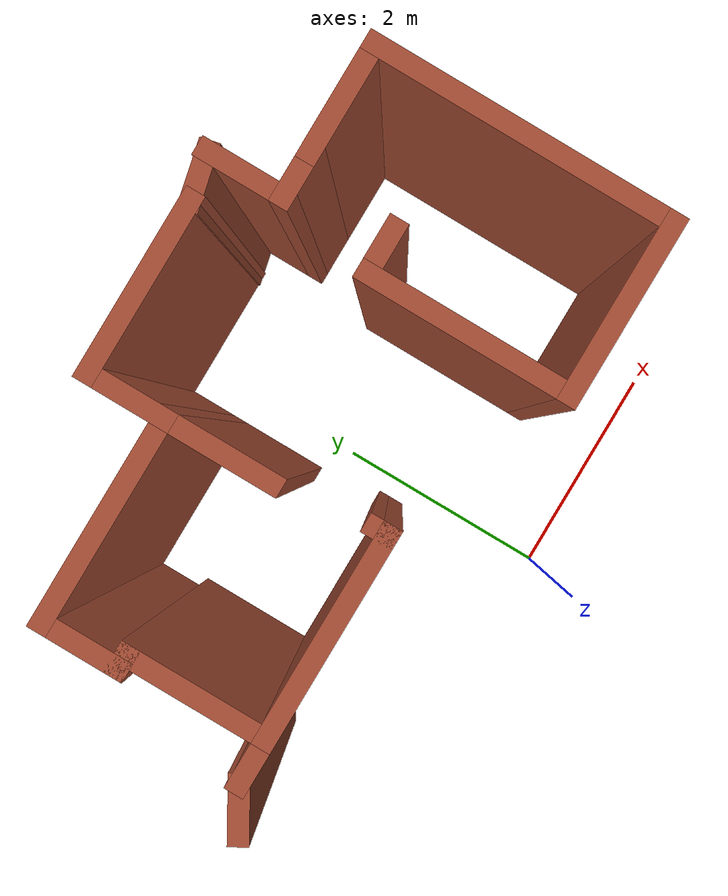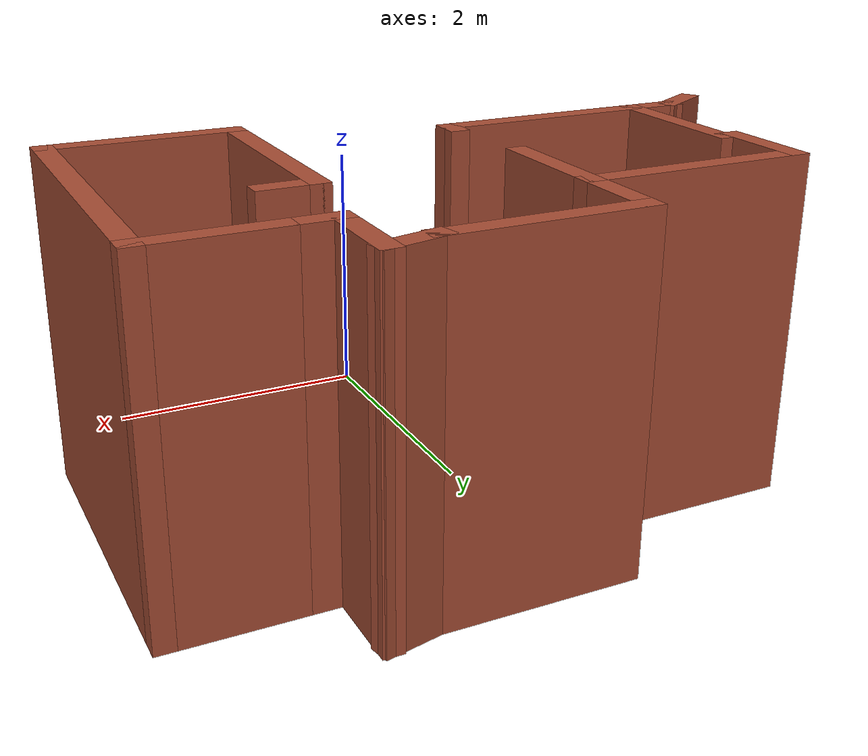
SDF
<sdf version="1.6">
 <model name="map_41">
  <link name="Wall_1">
   <pose>0.319898 3.71517 0 0 -0 3.14159</pose>
   <visual name="Wall_1_Visual">
    <pose>0 0 1.25 0 -0 0</pose>
    <geometry><box><size>1.5 0.15 2.5</size></box></geometry>
    <material>
     <script><uri>file://media/materials/scripts/gazebo.material</uri><name>Gazebo/Bricks</name></script>
     <ambient>1 1 1 1</ambient>
     <shader type="pixel"/>
    </material>
    <meta><layer>0</layer></meta>
   </visual>
   <collision name="Wall_1_Collision">
    <pose>0 0 1.25 0 -0 0</pose>
    <geometry><box><size>1.5 0.15 2.5</size></box></geometry>
    <surface>
     <friction>
      <ode><mu>1</mu><mu2>1</mu2><fdir1>0 0 0</fdir1><slip1>0</slip1><slip2>0</slip2></ode>
      <torsional>
       <coefficient>1</coefficient>
       <patch_radius>0</patch_radius>
       <surface_radius>0</surface_radius>
       <use_patch_radius>1</use_patch_radius>
       <ode><slip>0</slip></ode>
      </torsional>
     </friction>
     <bounce><restitution_coefficient>0</restitution_coefficient><threshold>1e+06</threshold></bounce>
     <contact>
      <collide_without_contact>0</collide_without_contact>
      <collide_without_contact_bitmask>1</collide_without_contact_bitmask>
      <collide_bitmask>1</collide_bitmask>
      <ode>
       <soft_cfm>0</soft_cfm>
       <soft_erp>0.2</soft_erp>
       <kp>1e+13</kp>
       <kd>1</kd>
       <max_vel>0.01</max_vel>
       <min_depth>0</min_depth>
      </ode>
      <bullet>
       <split_impulse>1</split_impulse>
       <split_impulse_penetration_threshold>-0.01</split_impulse_penetration_threshold>
       <soft_cfm>0</soft_cfm>
       <soft_erp>0.2</soft_erp>
       <kp>1e+13</kp>
       <kd>1</kd>
      </bullet>
     </contact>
    </surface>
   </collision>
  </link>
  <link name="Wall_2">
   <pose>-0.355102 3.41517 0 0 0 -1.5708</pose>
   <visual name="Wall_2_Visual">
    <pose>0 0 1.25 0 -0 0</pose>
    <geometry><box><size>0.75 0.15 2.5</size></box></geometry>
    <material>
     <script><uri>file://media/materials/scripts/gazebo.material</uri><name>Gazebo/Bricks</name></script>
     <ambient>1 1 1 1</ambient>
     <shader type="pixel"/>
    </material>
    <meta><layer>0</layer></meta>
   </visual>
   <collision name="Wall_2_Collision">
    <pose>0 0 1.25 0 -0 0</pose>
    <geometry><box><size>0.75 0.15 2.5</size></box></geometry>
    <surface>
     <friction>
      <ode><mu>1</mu><mu2>1</mu2><fdir1>0 0 0</fdir1><slip1>0</slip1><slip2>0</slip2></ode>
      <torsional>
       <coefficient>1</coefficient>
       <patch_radius>0</patch_radius>
       <surface_radius>0</surface_radius>
       <use_patch_radius>1</use_patch_radius>
       <ode><slip>0</slip></ode>
      </torsional>
     </friction>
     <bounce><restitution_coefficient>0</restitution_coefficient><threshold>1e+06</threshold></bounce>
     <contact>
      <collide_without_contact>0</collide_without_contact>
      <collide_without_contact_bitmask>1</collide_without_contact_bitmask>
      <collide_bitmask>1</collide_bitmask>
      <ode>
       <soft_cfm>0</soft_cfm>
       <soft_erp>0.2</soft_erp>
       <kp>1e+13</kp>
       <kd>1</kd>
       <max_vel>0.01</max_vel>
       <min_depth>0</min_depth>
      </ode>
      <bullet>
       <split_impulse>1</split_impulse>
       <split_impulse_penetration_threshold>-0.01</split_impulse_penetration_threshold>
       <soft_cfm>0</soft_cfm>
       <soft_erp>0.2</soft_erp>
       <kp>1e+13</kp>
       <kd>1</kd>
      </bullet>
     </contact>
    </surface>
   </collision>
  </link>
  <link name="Wall_3">
   <pose>-1.1551 3.11517 0 0 -0 3.14159</pose>
   <visual name="Wall_3_Visual">
    <pose>0 0 1.25 0 -0 0</pose>
    <geometry><box><size>1.75 0.15 2.5</size></box></geometry>
    <material>
     <script><uri>file://media/materials/scripts/gazebo.material</uri><name>Gazebo/Bricks</name></script>
     <ambient>1 1 1 1</ambient>
     <shader type="pixel"/>
    </material>
    <meta><layer>0</layer></meta>
   </visual>
   <collision name="Wall_3_Collision">
    <pose>0 0 1.25 0 -0 0</pose>
    <geometry><box><size>1.75 0.15 2.5</size></box></geometry>
    <surface>
     <friction>
      <ode><mu>1</mu><mu2>1</mu2><fdir1>0 0 0</fdir1><slip1>0</slip1><slip2>0</slip2></ode>
      <torsional>
       <coefficient>1</coefficient>
       <patch_radius>0</patch_radius>
       <surface_radius>0</surface_radius>
       <use_patch_radius>1</use_patch_radius>
       <ode><slip>0</slip></ode>
      </torsional>
     </friction>
     <bounce><restitution_coefficient>0</restitution_coefficient><threshold>1e+06</threshold></bounce>
     <contact>
      <collide_without_contact>0</collide_without_contact>
      <collide_without_contact_bitmask>1</collide_without_contact_bitmask>
      <collide_bitmask>1</collide_bitmask>
      <ode>
       <soft_cfm>0</soft_cfm>
       <soft_erp>0.2</soft_erp>
       <kp>1e+13</kp>
       <kd>1</kd>
       <max_vel>0.01</max_vel>
       <min_depth>0</min_depth>
      </ode>
      <bullet>
       <split_impulse>1</split_impulse>
       <split_impulse_penetration_threshold>-0.01</split_impulse_penetration_threshold>
       <soft_cfm>0</soft_cfm>
       <soft_erp>0.2</soft_erp>
       <kp>1e+13</kp>
       <kd>1</kd>
      </bullet>
     </contact>
    </surface>
   </collision>
  </link>
  <link name="Wall_36">
   <pose>1.86428 0.842681 0 0 -0 0</pose>
   <visual name="Wall_36_Visual">
    <pose>0 0 1.25 0 -0 0</pose>
    <geometry><box><size>1.5 0.15 2.5</size></box></geometry>
    <material>
     <script><uri>file://media/materials/scripts/gazebo.material</uri><name>Gazebo/Bricks</name></script>
     <ambient>1 1 1 1</ambient>
     <shader type="pixel"/>
    </material>
    <meta><layer>0</layer></meta>
   </visual>
   <collision name="Wall_36_Collision">
    <pose>0 0 1.25 0 -0 0</pose>
    <geometry><box><size>1.5 0.15 2.5</size></box></geometry>
    <surface>
     <friction>
      <ode><mu>1</mu><mu2>1</mu2><fdir1>0 0 0</fdir1><slip1>0</slip1><slip2>0</slip2></ode>
      <torsional>
       <coefficient>1</coefficient>
       <patch_radius>0</patch_radius>
       <surface_radius>0</surface_radius>
       <use_patch_radius>1</use_patch_radius>
       <ode><slip>0</slip></ode>
      </torsional>
     </friction>
     <bounce><restitution_coefficient>0</restitution_coefficient><threshold>1e+06</threshold></bounce>
     <contact>
      <collide_without_contact>0</collide_without_contact>
      <collide_without_contact_bitmask>1</collide_without_contact_bitmask>
      <collide_bitmask>1</collide_bitmask>
      <ode>
       <soft_cfm>0</soft_cfm>
       <soft_erp>0.2</soft_erp>
       <kp>1e+13</kp>
       <kd>1</kd>
       <max_vel>0.01</max_vel>
       <min_depth>0</min_depth>
      </ode>
      <bullet>
       <split_impulse>1</split_impulse>
       <split_impulse_penetration_threshold>-0.01</split_impulse_penetration_threshold>
       <soft_cfm>0</soft_cfm>
       <soft_erp>0.2</soft_erp>
       <kp>1e+13</kp>
       <kd>1</kd>
      </bullet>
     </contact>
    </surface>
   </collision>
  </link>
  <link name="Wall_37">
   <pose>2.53928 2.01768 0 0 -0 1.5708</pose>
   <visual name="Wall_37_Visual">
    <pose>0 0 1.25 0 -0 0</pose>
    <geometry><box><size>2.5 0.15 2.5</size></box></geometry>
    <material>
     <script><uri>file://media/materials/scripts/gazebo.material</uri><name>Gazebo/Bricks</name></script>
     <ambient>1 1 1 1</ambient>
     <shader type="pixel"/>
    </material>
    <meta><layer>0</layer></meta>
   </visual>
   <collision name="Wall_37_Collision">
    <pose>0 0 1.25 0 -0 0</pose>
    <geometry><box><size>2.5 0.15 2.5</size></box></geometry>
    <surface>
     <friction>
      <ode><mu>1</mu><mu2>1</mu2><fdir1>0 0 0</fdir1><slip1>0</slip1><slip2>0</slip2></ode>
      <torsional>
       <coefficient>1</coefficient>
       <patch_radius>0</patch_radius>
       <surface_radius>0</surface_radius>
       <use_patch_radius>1</use_patch_radius>
       <ode><slip>0</slip></ode>
      </torsional>
     </friction>
     <bounce><restitution_coefficient>0</restitution_coefficient><threshold>1e+06</threshold></bounce>
     <contact>
      <collide_without_contact>0</collide_without_contact>
      <collide_without_contact_bitmask>1</collide_without_contact_bitmask>
      <collide_bitmask>1</collide_bitmask>
      <ode>
       <soft_cfm>0</soft_cfm>
       <soft_erp>0.2</soft_erp>
       <kp>1e+13</kp>
       <kd>1</kd>
       <max_vel>0.01</max_vel>
       <min_depth>0</min_depth>
      </ode>
      <bullet>
       <split_impulse>1</split_impulse>
       <split_impulse_penetration_threshold>-0.01</split_impulse_penetration_threshold>
       <soft_cfm>0</soft_cfm>
       <soft_erp>0.2</soft_erp>
       <kp>1e+13</kp>
       <kd>1</kd>
      </bullet>
     </contact>
    </surface>
   </collision>
  </link>
  <link name="Wall_4">
   <pose>-1.9551 2.81517 0 0 0 -1.5708</pose>
   <visual name="Wall_4_Visual">
    <pose>0 0 1.25 0 -0 0</pose>
    <geometry><box><size>0.75 0.15 2.5</size></box></geometry>
    <material>
     <script><uri>file://media/materials/scripts/gazebo.material</uri><name>Gazebo/Bricks</name></script>
     <ambient>1 1 1 1</ambient>
     <shader type="pixel"/>
    </material>
    <meta><layer>0</layer></meta>
   </visual>
   <collision name="Wall_4_Collision">
    <pose>0 0 1.25 0 -0 0</pose>
    <geometry><box><size>0.75 0.15 2.5</size></box></geometry>
    <surface>
     <friction>
      <ode><mu>1</mu><mu2>1</mu2><fdir1>0 0 0</fdir1><slip1>0</slip1><slip2>0</slip2></ode>
      <torsional>
       <coefficient>1</coefficient>
       <patch_radius>0</patch_radius>
       <surface_radius>0</surface_radius>
       <use_patch_radius>1</use_patch_radius>
       <ode><slip>0</slip></ode>
      </torsional>
     </friction>
     <bounce><restitution_coefficient>0</restitution_coefficient><threshold>1e+06</threshold></bounce>
     <contact>
      <collide_without_contact>0</collide_without_contact>
      <collide_without_contact_bitmask>1</collide_without_contact_bitmask>
      <collide_bitmask>1</collide_bitmask>
      <ode>
       <soft_cfm>0</soft_cfm>
       <soft_erp>0.2</soft_erp>
       <kp>1e+13</kp>
       <kd>1</kd>
       <max_vel>0.01</max_vel>
       <min_depth>0</min_depth>
      </ode>
      <bullet>
       <split_impulse>1</split_impulse>
       <split_impulse_penetration_threshold>-0.01</split_impulse_penetration_threshold>
       <soft_cfm>0</soft_cfm>
       <soft_erp>0.2</soft_erp>
       <kp>1e+13</kp>
       <kd>1</kd>
      </bullet>
     </contact>
    </surface>
   </collision>
  </link>
  <link name="Wall_40">
   <pose>2.11428 3.19268 0 0 -0 3.14159</pose>
   <visual name="Wall_40_Visual">
    <pose>0 0 1.25 0 -0 0</pose>
    <geometry><box><size>1 0.15 2.5</size></box></geometry>
    <material>
     <script><uri>file://media/materials/scripts/gazebo.material</uri><name>Gazebo/Bricks</name></script>
     <ambient>1 1 1 1</ambient>
     <shader type="pixel"/>
    </material>
    <meta><layer>0</layer></meta>
   </visual>
   <collision name="Wall_40_Collision">
    <pose>0 0 1.25 0 -0 0</pose>
    <geometry><box><size>1 0.15 2.5</size></box></geometry>
    <surface>
     <friction>
      <ode><mu>1</mu><mu2>1</mu2><fdir1>0 0 0</fdir1><slip1>0</slip1><slip2>0</slip2></ode>
      <torsional>
       <coefficient>1</coefficient>
       <patch_radius>0</patch_radius>
       <surface_radius>0</surface_radius>
       <use_patch_radius>1</use_patch_radius>
       <ode><slip>0</slip></ode>
      </torsional>
     </friction>
     <bounce><restitution_coefficient>0</restitution_coefficient><threshold>1e+06</threshold></bounce>
     <contact>
      <collide_without_contact>0</collide_without_contact>
      <collide_without_contact_bitmask>1</collide_without_contact_bitmask>
      <collide_bitmask>1</collide_bitmask>
      <ode>
       <soft_cfm>0</soft_cfm>
       <soft_erp>0.2</soft_erp>
       <kp>1e+13</kp>
       <kd>1</kd>
       <max_vel>0.01</max_vel>
       <min_depth>0</min_depth>
      </ode>
      <bullet>
       <split_impulse>1</split_impulse>
       <split_impulse_penetration_threshold>-0.01</split_impulse_penetration_threshold>
       <soft_cfm>0</soft_cfm>
       <soft_erp>0.2</soft_erp>
       <kp>1e+13</kp>
       <kd>1</kd>
      </bullet>
     </contact>
    </surface>
   </collision>
  </link>
  <link name="Wall_42">
   <pose>1.51428 3.19268 0 0 -0 3.14159</pose>
   <visual name="Wall_42_Visual">
    <pose>0 0 1.25 0 -0 0</pose>
    <geometry><box><size>0.5 0.15 2.5</size></box></geometry>
    <material>
     <script><uri>file://media/materials/scripts/gazebo.material</uri><name>Gazebo/Bricks</name></script>
     <ambient>1 1 1 1</ambient>
     <shader type="pixel"/>
    </material>
    <meta><layer>0</layer></meta>
   </visual>
   <collision name="Wall_42_Collision">
    <pose>0 0 1.25 0 -0 0</pose>
    <geometry><box><size>0.5 0.15 2.5</size></box></geometry>
    <surface>
     <friction>
      <ode><mu>1</mu><mu2>1</mu2><fdir1>0 0 0</fdir1><slip1>0</slip1><slip2>0</slip2></ode>
      <torsional>
       <coefficient>1</coefficient>
       <patch_radius>0</patch_radius>
       <surface_radius>0</surface_radius>
       <use_patch_radius>1</use_patch_radius>
       <ode><slip>0</slip></ode>
      </torsional>
     </friction>
     <bounce><restitution_coefficient>0</restitution_coefficient><threshold>1e+06</threshold></bounce>
     <contact>
      <collide_without_contact>0</collide_without_contact>
      <collide_without_contact_bitmask>1</collide_without_contact_bitmask>
      <collide_bitmask>1</collide_bitmask>
      <ode>
       <soft_cfm>0</soft_cfm>
       <soft_erp>0.2</soft_erp>
       <kp>1e+13</kp>
       <kd>1</kd>
       <max_vel>0.01</max_vel>
       <min_depth>0</min_depth>
      </ode>
      <bullet>
       <split_impulse>1</split_impulse>
       <split_impulse_penetration_threshold>-0.01</split_impulse_penetration_threshold>
       <soft_cfm>0</soft_cfm>
       <soft_erp>0.2</soft_erp>
       <kp>1e+13</kp>
       <kd>1</kd>
      </bullet>
     </contact>
    </surface>
   </collision>
  </link>
  <link name="Wall_45">
   <pose>1.33928 3.49268 0 0 -0 1.5708</pose>
   <visual name="Wall_45_Visual">
    <pose>0 0 1.25 0 -0 0</pose>
    <geometry><box><size>0.75 0.15 2.5</size></box></geometry>
    <material>
     <script><uri>file://media/materials/scripts/gazebo.material</uri><name>Gazebo/Bricks</name></script>
     <ambient>1 1 1 1</ambient>
     <shader type="pixel"/>
    </material>
    <meta><layer>0</layer></meta>
   </visual>
   <collision name="Wall_45_Collision">
    <pose>0 0 1.25 0 -0 0</pose>
    <geometry><box><size>0.75 0.15 2.5</size></box></geometry>
    <surface>
     <friction>
      <ode><mu>1</mu><mu2>1</mu2><fdir1>0 0 0</fdir1><slip1>0</slip1><slip2>0</slip2></ode>
      <torsional>
       <coefficient>1</coefficient>
       <patch_radius>0</patch_radius>
       <surface_radius>0</surface_radius>
       <use_patch_radius>1</use_patch_radius>
       <ode><slip>0</slip></ode>
      </torsional>
     </friction>
     <bounce><restitution_coefficient>0</restitution_coefficient><threshold>1e+06</threshold></bounce>
     <contact>
      <collide_without_contact>0</collide_without_contact>
      <collide_without_contact_bitmask>1</collide_without_contact_bitmask>
      <collide_bitmask>1</collide_bitmask>
      <ode>
       <soft_cfm>0</soft_cfm>
       <soft_erp>0.2</soft_erp>
       <kp>1e+13</kp>
       <kd>1</kd>
       <max_vel>0.01</max_vel>
       <min_depth>0</min_depth>
      </ode>
      <bullet>
       <split_impulse>1</split_impulse>
       <split_impulse_penetration_threshold>-0.01</split_impulse_penetration_threshold>
       <soft_cfm>0</soft_cfm>
       <soft_erp>0.2</soft_erp>
       <kp>1e+13</kp>
       <kd>1</kd>
      </bullet>
     </contact>
    </surface>
   </collision>
  </link>
  <link name="Wall_46">
   <pose>1.16709 3.75393 0 0 0 -2.9202</pose>
   <visual name="Wall_46_Visual">
    <pose>0 0 1.25 0 -0 0</pose>
    <geometry><box><size>0.502994 0.15 2.5</size></box></geometry>
    <material>
     <script><uri>file://media/materials/scripts/gazebo.material</uri><name>Gazebo/Bricks</name></script>
     <ambient>1 1 1 1</ambient>
     <shader type="pixel"/>
    </material>
    <meta><layer>0</layer></meta>
   </visual>
   <collision name="Wall_46_Collision">
    <pose>0 0 1.25 0 -0 0</pose>
    <geometry><box><size>0.502994 0.15 2.5</size></box></geometry>
    <surface>
     <friction>
      <ode><mu>1</mu><mu2>1</mu2><fdir1>0 0 0</fdir1><slip1>0</slip1><slip2>0</slip2></ode>
      <torsional>
       <coefficient>1</coefficient>
       <patch_radius>0</patch_radius>
       <surface_radius>0</surface_radius>
       <use_patch_radius>1</use_patch_radius>
       <ode><slip>0</slip></ode>
      </torsional>
     </friction>
     <bounce><restitution_coefficient>0</restitution_coefficient><threshold>1e+06</threshold></bounce>
     <contact>
      <collide_without_contact>0</collide_without_contact>
      <collide_without_contact_bitmask>1</collide_without_contact_bitmask>
      <collide_bitmask>1</collide_bitmask>
      <ode>
       <soft_cfm>0</soft_cfm>
       <soft_erp>0.2</soft_erp>
       <kp>1e+13</kp>
       <kd>1</kd>
       <max_vel>0.01</max_vel>
       <min_depth>0</min_depth>
      </ode>
      <bullet>
       <split_impulse>1</split_impulse>
       <split_impulse_penetration_threshold>-0.01</split_impulse_penetration_threshold>
       <soft_cfm>0</soft_cfm>
       <soft_erp>0.2</soft_erp>
       <kp>1e+13</kp>
       <kd>1</kd>
      </bullet>
     </contact>
    </surface>
   </collision>
  </link>
  <link name="Wall_5">
   <pose>-1.9051 2.51517 0 0 -0 0</pose>
   <visual name="Wall_5_Visual">
    <pose>0 0 1.25 0 -0 0</pose>
    <geometry><box><size>0.25 0.15 2.5</size></box></geometry>
    <material>
     <script><uri>file://media/materials/scripts/gazebo.material</uri><name>Gazebo/Bricks</name></script>
     <ambient>1 1 1 1</ambient>
     <shader type="pixel"/>
    </material>
    <meta><layer>0</layer></meta>
   </visual>
   <collision name="Wall_5_Collision">
    <pose>0 0 1.25 0 -0 0</pose>
    <geometry><box><size>0.25 0.15 2.5</size></box></geometry>
    <surface>
     <friction>
      <ode><mu>1</mu><mu2>1</mu2><fdir1>0 0 0</fdir1><slip1>0</slip1><slip2>0</slip2></ode>
      <torsional>
       <coefficient>1</coefficient>
       <patch_radius>0</patch_radius>
       <surface_radius>0</surface_radius>
       <use_patch_radius>1</use_patch_radius>
       <ode><slip>0</slip></ode>
      </torsional>
     </friction>
     <bounce><restitution_coefficient>0</restitution_coefficient><threshold>1e+06</threshold></bounce>
     <contact>
      <collide_without_contact>0</collide_without_contact>
      <collide_without_contact_bitmask>1</collide_without_contact_bitmask>
      <collide_bitmask>1</collide_bitmask>
      <ode>
       <soft_cfm>0</soft_cfm>
       <soft_erp>0.2</soft_erp>
       <kp>1e+13</kp>
       <kd>1</kd>
       <max_vel>0.01</max_vel>
       <min_depth>0</min_depth>
      </ode>
      <bullet>
       <split_impulse>1</split_impulse>
       <split_impulse_penetration_threshold>-0.01</split_impulse_penetration_threshold>
       <soft_cfm>0</soft_cfm>
       <soft_erp>0.2</soft_erp>
       <kp>1e+13</kp>
       <kd>1</kd>
      </bullet>
     </contact>
    </surface>
   </collision>
  </link>
  <link name="Wall_52">
   <pose>-0.355102 2.69017 0 0 0 -1.5708</pose>
   <visual name="Wall_52_Visual">
    <pose>0 0 1.25 0 -0 0</pose>
    <geometry><box><size>1 0.15 2.5</size></box></geometry>
    <material>
     <script><uri>file://media/materials/scripts/gazebo.material</uri><name>Gazebo/Bricks</name></script>
     <ambient>1 1 1 1</ambient>
     <shader type="pixel"/>
    </material>
    <meta><layer>0</layer></meta>
   </visual>
   <collision name="Wall_52_Collision">
    <pose>0 0 1.25 0 -0 0</pose>
    <geometry><box><size>1 0.15 2.5</size></box></geometry>
    <surface>
     <friction>
      <ode><mu>1</mu><mu2>1</mu2><fdir1>0 0 0</fdir1><slip1>0</slip1><slip2>0</slip2></ode>
      <torsional>
       <coefficient>1</coefficient>
       <patch_radius>0</patch_radius>
       <surface_radius>0</surface_radius>
       <use_patch_radius>1</use_patch_radius>
       <ode><slip>0</slip></ode>
      </torsional>
     </friction>
     <bounce><restitution_coefficient>0</restitution_coefficient><threshold>1e+06</threshold></bounce>
     <contact>
      <collide_without_contact>0</collide_without_contact>
      <collide_without_contact_bitmask>1</collide_without_contact_bitmask>
      <collide_bitmask>1</collide_bitmask>
      <ode>
       <soft_cfm>0</soft_cfm>
       <soft_erp>0.2</soft_erp>
       <kp>1e+13</kp>
       <kd>1</kd>
       <max_vel>0.01</max_vel>
       <min_depth>0</min_depth>
      </ode>
      <bullet>
       <split_impulse>1</split_impulse>
       <split_impulse_penetration_threshold>-0.01</split_impulse_penetration_threshold>
       <soft_cfm>0</soft_cfm>
       <soft_erp>0.2</soft_erp>
       <kp>1e+13</kp>
       <kd>1</kd>
      </bullet>
     </contact>
    </surface>
   </collision>
  </link>
  <link name="Wall_54">
   <pose>-1.0551 1.41517 0 0 -0 0</pose>
   <visual name="Wall_54_Visual">
    <pose>0 0 1.25 0 -0 0</pose>
    <geometry><box><size>1.75 0.15 2.5</size></box></geometry>
    <material>
     <script><uri>file://media/materials/scripts/gazebo.material</uri><name>Gazebo/Bricks</name></script>
     <ambient>1 1 1 1</ambient>
     <shader type="pixel"/>
    </material>
    <meta><layer>0</layer></meta>
   </visual>
   <collision name="Wall_54_Collision">
    <pose>0 0 1.25 0 -0 0</pose>
    <geometry><box><size>1.75 0.15 2.5</size></box></geometry>
    <surface>
     <friction>
      <ode><mu>1</mu><mu2>1</mu2><fdir1>0 0 0</fdir1><slip1>0</slip1><slip2>0</slip2></ode>
      <torsional>
       <coefficient>1</coefficient>
       <patch_radius>0</patch_radius>
       <surface_radius>0</surface_radius>
       <use_patch_radius>1</use_patch_radius>
       <ode><slip>0</slip></ode>
      </torsional>
     </friction>
     <bounce><restitution_coefficient>0</restitution_coefficient><threshold>1e+06</threshold></bounce>
     <contact>
      <collide_without_contact>0</collide_without_contact>
      <collide_without_contact_bitmask>1</collide_without_contact_bitmask>
      <collide_bitmask>1</collide_bitmask>
      <ode>
       <soft_cfm>0</soft_cfm>
       <soft_erp>0.2</soft_erp>
       <kp>1e+13</kp>
       <kd>1</kd>
       <max_vel>0.01</max_vel>
       <min_depth>0</min_depth>
      </ode>
      <bullet>
       <split_impulse>1</split_impulse>
       <split_impulse_penetration_threshold>-0.01</split_impulse_penetration_threshold>
       <soft_cfm>0</soft_cfm>
       <soft_erp>0.2</soft_erp>
       <kp>1e+13</kp>
       <kd>1</kd>
      </bullet>
     </contact>
    </surface>
   </collision>
  </link>
  <link name="Wall_55">
   <pose>-0.255102 1.46517 0 0 -0 1.5708</pose>
   <visual name="Wall_55_Visual">
    <pose>0 0 1.25 0 -0 0</pose>
    <geometry><box><size>0.25 0.15 2.5</size></box></geometry>
    <material>
     <script><uri>file://media/materials/scripts/gazebo.material</uri><name>Gazebo/Bricks</name></script>
     <ambient>1 1 1 1</ambient>
     <shader type="pixel"/>
    </material>
    <meta><layer>0</layer></meta>
   </visual>
   <collision name="Wall_55_Collision">
    <pose>0 0 1.25 0 -0 0</pose>
    <geometry><box><size>0.25 0.15 2.5</size></box></geometry>
    <surface>
     <friction>
      <ode><mu>1</mu><mu2>1</mu2><fdir1>0 0 0</fdir1><slip1>0</slip1><slip2>0</slip2></ode>
      <torsional>
       <coefficient>1</coefficient>
       <patch_radius>0</patch_radius>
       <surface_radius>0</surface_radius>
       <use_patch_radius>1</use_patch_radius>
       <ode><slip>0</slip></ode>
      </torsional>
     </friction>
     <bounce><restitution_coefficient>0</restitution_coefficient><threshold>1e+06</threshold></bounce>
     <contact>
      <collide_without_contact>0</collide_without_contact>
      <collide_without_contact_bitmask>1</collide_without_contact_bitmask>
      <collide_bitmask>1</collide_bitmask>
      <ode>
       <soft_cfm>0</soft_cfm>
       <soft_erp>0.2</soft_erp>
       <kp>1e+13</kp>
       <kd>1</kd>
       <max_vel>0.01</max_vel>
       <min_depth>0</min_depth>
      </ode>
      <bullet>
       <split_impulse>1</split_impulse>
       <split_impulse_penetration_threshold>-0.01</split_impulse_penetration_threshold>
       <soft_cfm>0</soft_cfm>
       <soft_erp>0.2</soft_erp>
       <kp>1e+13</kp>
       <kd>1</kd>
      </bullet>
     </contact>
    </surface>
   </collision>
  </link>
  <link name="Wall_6">
   <pose>-1.8551 1.96517 0 0 0 -1.5708</pose>
   <visual name="Wall_6_Visual">
    <pose>0 0 1.25 0 -0 0</pose>
    <geometry><box><size>1.25 0.15 2.5</size></box></geometry>
    <material>
     <script><uri>file://media/materials/scripts/gazebo.material</uri><name>Gazebo/Bricks</name></script>
     <ambient>1 1 1 1</ambient>
     <shader type="pixel"/>
    </material>
    <meta><layer>0</layer></meta>
   </visual>
   <collision name="Wall_6_Collision">
    <pose>0 0 1.25 0 -0 0</pose>
    <geometry><box><size>1.25 0.15 2.5</size></box></geometry>
    <surface>
     <friction>
      <ode><mu>1</mu><mu2>1</mu2><fdir1>0 0 0</fdir1><slip1>0</slip1><slip2>0</slip2></ode>
      <torsional>
       <coefficient>1</coefficient>
       <patch_radius>0</patch_radius>
       <surface_radius>0</surface_radius>
       <use_patch_radius>1</use_patch_radius>
       <ode><slip>0</slip></ode>
      </torsional>
     </friction>
     <bounce><restitution_coefficient>0</restitution_coefficient><threshold>1e+06</threshold></bounce>
     <contact>
      <collide_without_contact>0</collide_without_contact>
      <collide_without_contact_bitmask>1</collide_without_contact_bitmask>
      <collide_bitmask>1</collide_bitmask>
      <ode>
       <soft_cfm>0</soft_cfm>
       <soft_erp>0.2</soft_erp>
       <kp>1e+13</kp>
       <kd>1</kd>
       <max_vel>0.01</max_vel>
       <min_depth>0</min_depth>
      </ode>
      <bullet>
       <split_impulse>1</split_impulse>
       <split_impulse_penetration_threshold>-0.01</split_impulse_penetration_threshold>
       <soft_cfm>0</soft_cfm>
       <soft_erp>0.2</soft_erp>
       <kp>1e+13</kp>
       <kd>1</kd>
      </bullet>
     </contact>
    </surface>
   </collision>
  </link>
  <link name="Wall_61">
   <pose>1.18928 1.64268 0 0 -0 1.5708</pose>
   <visual name="Wall_61_Visual">
    <pose>0 0 1.25 0 -0 0</pose>
    <geometry><box><size>1.75 0.15 2.5</size></box></geometry>
    <material>
     <script><uri>file://media/materials/scripts/gazebo.material</uri><name>Gazebo/Bricks</name></script>
     <ambient>1 1 1 1</ambient>
     <shader type="pixel"/>
    </material>
    <meta><layer>0</layer></meta>
   </visual>
   <collision name="Wall_61_Collision">
    <pose>0 0 1.25 0 -0 0</pose>
    <geometry><box><size>1.75 0.15 2.5</size></box></geometry>
    <surface>
     <friction>
      <ode><mu>1</mu><mu2>1</mu2><fdir1>0 0 0</fdir1><slip1>0</slip1><slip2>0</slip2></ode>
      <torsional>
       <coefficient>1</coefficient>
       <patch_radius>0</patch_radius>
       <surface_radius>0</surface_radius>
       <use_patch_radius>1</use_patch_radius>
       <ode><slip>0</slip></ode>
      </torsional>
     </friction>
     <bounce><restitution_coefficient>0</restitution_coefficient><threshold>1e+06</threshold></bounce>
     <contact>
      <collide_without_contact>0</collide_without_contact>
      <collide_without_contact_bitmask>1</collide_without_contact_bitmask>
      <collide_bitmask>1</collide_bitmask>
      <ode>
       <soft_cfm>0</soft_cfm>
       <soft_erp>0.2</soft_erp>
       <kp>1e+13</kp>
       <kd>1</kd>
       <max_vel>0.01</max_vel>
       <min_depth>0</min_depth>
      </ode>
      <bullet>
       <split_impulse>1</split_impulse>
       <split_impulse_penetration_threshold>-0.01</split_impulse_penetration_threshold>
       <soft_cfm>0</soft_cfm>
       <soft_erp>0.2</soft_erp>
       <kp>1e+13</kp>
       <kd>1</kd>
      </bullet>
     </contact>
    </surface>
   </collision>
  </link>
  <link name="Wall_62">
   <pose>1.36428 2.44268 0 0 -0 0</pose>
   <visual name="Wall_62_Visual">
    <pose>0 0 1.25 0 -0 0</pose>
    <geometry><box><size>0.5 0.15 2.5</size></box></geometry>
    <material>
     <script><uri>file://media/materials/scripts/gazebo.material</uri><name>Gazebo/Bricks</name></script>
     <ambient>1 1 1 1</ambient>
     <shader type="pixel"/>
    </material>
    <meta><layer>0</layer></meta>
   </visual>
   <collision name="Wall_62_Collision">
    <pose>0 0 1.25 0 -0 0</pose>
    <geometry><box><size>0.5 0.15 2.5</size></box></geometry>
    <surface>
     <friction>
      <ode><mu>1</mu><mu2>1</mu2><fdir1>0 0 0</fdir1><slip1>0</slip1><slip2>0</slip2></ode>
      <torsional>
       <coefficient>1</coefficient>
       <patch_radius>0</patch_radius>
       <surface_radius>0</surface_radius>
       <use_patch_radius>1</use_patch_radius>
       <ode><slip>0</slip></ode>
      </torsional>
     </friction>
     <bounce><restitution_coefficient>0</restitution_coefficient><threshold>1e+06</threshold></bounce>
     <contact>
      <collide_without_contact>0</collide_without_contact>
      <collide_without_contact_bitmask>1</collide_without_contact_bitmask>
      <collide_bitmask>1</collide_bitmask>
      <ode>
       <soft_cfm>0</soft_cfm>
       <soft_erp>0.2</soft_erp>
       <kp>1e+13</kp>
       <kd>1</kd>
       <max_vel>0.01</max_vel>
       <min_depth>0</min_depth>
      </ode>
      <bullet>
       <split_impulse>1</split_impulse>
       <split_impulse_penetration_threshold>-0.01</split_impulse_penetration_threshold>
       <soft_cfm>0</soft_cfm>
       <soft_erp>0.2</soft_erp>
       <kp>1e+13</kp>
       <kd>1</kd>
      </bullet>
     </contact>
    </surface>
   </collision>
  </link>
  <link name="Wall_7">
   <pose>-2.0301 1.41517 0 0 -0 3.14159</pose>
   <visual name="Wall_7_Visual">
    <pose>0 0 1.25 0 -0 0</pose>
    <geometry><box><size>0.5 0.15 2.5</size></box></geometry>
    <material>
     <script><uri>file://media/materials/scripts/gazebo.material</uri><name>Gazebo/Bricks</name></script>
     <ambient>1 1 1 1</ambient>
     <shader type="pixel"/>
    </material>
    <meta><layer>0</layer></meta>
   </visual>
   <collision name="Wall_7_Collision">
    <pose>0 0 1.25 0 -0 0</pose>
    <geometry><box><size>0.5 0.15 2.5</size></box></geometry>
    <surface>
     <friction>
      <ode><mu>1</mu><mu2>1</mu2><fdir1>0 0 0</fdir1><slip1>0</slip1><slip2>0</slip2></ode>
      <torsional>
       <coefficient>1</coefficient>
       <patch_radius>0</patch_radius>
       <surface_radius>0</surface_radius>
       <use_patch_radius>1</use_patch_radius>
       <ode><slip>0</slip></ode>
      </torsional>
     </friction>
     <bounce><restitution_coefficient>0</restitution_coefficient><threshold>1e+06</threshold></bounce>
     <contact>
      <collide_without_contact>0</collide_without_contact>
      <collide_without_contact_bitmask>1</collide_without_contact_bitmask>
      <collide_bitmask>1</collide_bitmask>
      <ode>
       <soft_cfm>0</soft_cfm>
       <soft_erp>0.2</soft_erp>
       <kp>1e+13</kp>
       <kd>1</kd>
       <max_vel>0.01</max_vel>
       <min_depth>0</min_depth>
      </ode>
      <bullet>
       <split_impulse>1</split_impulse>
       <split_impulse_penetration_threshold>-0.01</split_impulse_penetration_threshold>
       <soft_cfm>0</soft_cfm>
       <soft_erp>0.2</soft_erp>
       <kp>1e+13</kp>
       <kd>1</kd>
      </bullet>
     </contact>
    </surface>
   </collision>
  </link>
  <link name="Wall_8">
   <pose>-2.35666 1.32767 0 0 0 -2.61799</pose>
   <visual name="Wall_8_Visual">
    <pose>0 0 1.25 0 -0 0</pose>
    <geometry><box><size>0.5 0.15 2.5</size></box></geometry>
    <material>
     <script><uri>file://media/materials/scripts/gazebo.material</uri><name>Gazebo/Bricks</name></script>
     <ambient>1 1 1 1</ambient>
     <shader type="pixel"/>
    </material>
    <meta><layer>0</layer></meta>
   </visual>
   <collision name="Wall_8_Collision">
    <pose>0 0 1.25 0 -0 0</pose>
    <geometry><box><size>0.5 0.15 2.5</size></box></geometry>
    <surface>
     <friction>
      <ode><mu>1</mu><mu2>1</mu2><fdir1>0 0 0</fdir1><slip1>0</slip1><slip2>0</slip2></ode>
      <torsional>
       <coefficient>1</coefficient>
       <patch_radius>0</patch_radius>
       <surface_radius>0</surface_radius>
       <use_patch_radius>1</use_patch_radius>
       <ode><slip>0</slip></ode>
      </torsional>
     </friction>
     <bounce><restitution_coefficient>0</restitution_coefficient><threshold>1e+06</threshold></bounce>
     <contact>
      <collide_without_contact>0</collide_without_contact>
      <collide_without_contact_bitmask>1</collide_without_contact_bitmask>
      <collide_bitmask>1</collide_bitmask>
      <ode>
       <soft_cfm>0</soft_cfm>
       <soft_erp>0.2</soft_erp>
       <kp>1e+13</kp>
       <kd>1</kd>
       <max_vel>0.01</max_vel>
       <min_depth>0</min_depth>
      </ode>
      <bullet>
       <split_impulse>1</split_impulse>
       <split_impulse_penetration_threshold>-0.01</split_impulse_penetration_threshold>
       <soft_cfm>0</soft_cfm>
       <soft_erp>0.2</soft_erp>
       <kp>1e+13</kp>
       <kd>1</kd>
      </bullet>
     </contact>
    </surface>
   </collision>
  </link>
  <static>1</static>
 </model>
</sdf>
